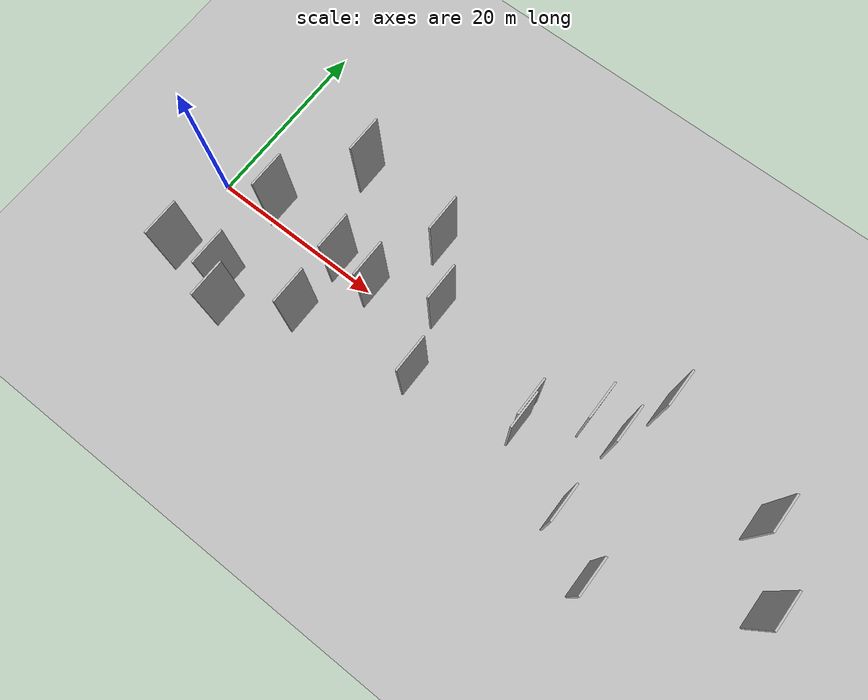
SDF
<?xml version="1.0" encoding="utf-8"?>

<sdf version="1.6">

   <world name="default">

      <gui fullscreen="0">

         <camera name="user_camera">

            <pose>-15 0 4.57585 0 0 0</pose>

            <view_controller>orbit</view_controller>

         </camera>

      </gui>

      <scene>

         <sky>

           <clouds>

             <speed>12</speed>

           </clouds>

         </sky>

         <ambient>0.4 0.4 0.4 1</ambient>

         <background>0.7 0.7 0.7 1</background>

         <shadows>1</shadows>

      </scene>

      <gravity>0 0 -9.8066</gravity>

      <magnetic_field>6e-06 2.3e-05 -4.2e-05</magnetic_field>

      <physics default="0" name="default_physics" type="ode">

         <ode>

            <solver>

               <type>quick</type>

               <iters>10</iters>

               <sor>1.0</sor>

               <use_dynamic_moi_rescaling>0</use_dynamic_moi_rescaling>

            </solver>

            <constraints>

               <cfm>0</cfm>

               <erp>0.2</erp>

               <contact_max_correcting_vel>100</contact_max_correcting_vel>

               <contact_surface_layer>0.001</contact_surface_layer>

            </constraints>

         </ode>

         <max_step_size>0.004</max_step_size>

         <real_time_factor>1</real_time_factor>

         <real_time_update_rate>250</real_time_update_rate>

      </physics>

      <light name="sun" type="directional">

         <cast_shadows>1</cast_shadows>

         <pose>0 0 10 0 0 0</pose>

         <diffuse>0.8 0.8 0.8 1</diffuse>

         <specular>0.2 0.2 0.2 1</specular>

         <attenuation>

            <range>1000</range>

            <constant>0.9</constant>

            <linear>0.01</linear>

            <quadratic>0.001</quadratic>

         </attenuation>

         <direction>-0.5 0.1 -0.9</direction>

      </light>

      <include>

         <name>ground_plane_1</name>

         <uri>model://HANNAS_ground_plane</uri>

         <pose>0 0 0  0 0 0</pose>

      </include>

      <include>

         <name>ground_plane_2</name>

         <uri>model://HANNAS_ground_plane</uri>

         <pose>100 0 0  0 0 0</pose>

      </include>

      <model name="HANNAS_wall_1">

         <static>1</static>

         <pose frame="">4.2249 -9.0640 5.0 0.000000 0.000000 1.570796</pose>

         <link name="link">

            <pose frame="">0 0 5.00 0 0 0</pose>

            <collision name="collision">

               <geometry>

                  <box>

                     <size>4.00 0.2 10.00</size>

                  </box>

               </geometry>

               <max_contacts>10</max_contacts>

               <surface>

                  <contact>

                     <ode/>

                  </contact>

                  <bounce/>

                  <friction>

                     <torsional>

                        <ode/>

                     </torsional>

                     <ode/>

                  </friction>

               </surface>

            </collision>

            <visual name="visual">

               <cast_shadows>0</cast_shadows>

               <geometry>

                  <box>

                     <size>4.00 0.2 10.00</size>

                  </box>

               </geometry>

               <material>

                  <script>

                     <uri>model://HANNAS_wall/materials/scripts</uri>

                     <uri>model://HANNAS_wall/materials/textures</uri>

                     <name>vrc/HANNAS_wall</name>

                  </script>

               </material>

            </visual>

            <self_collide>0</self_collide>

            <enable_wind>0</enable_wind>

            <kinematic>0</kinematic>

         </link>

      </model>

      <model name="HANNAS_wall_2">

         <static>1</static>

         <pose frame="">9.5942 -8.5301 5.0 0.000000 0.000000 1.570796</pose>

         <link name="link">

            <pose frame="">0 0 5.00 0 0 0</pose>

            <collision name="collision">

               <geometry>

                  <box>

                     <size>4.00 0.2 10.00</size>

                  </box>

               </geometry>

               <max_contacts>10</max_contacts>

               <surface>

                  <contact>

                     <ode/>

                  </contact>

                  <bounce/>

                  <friction>

                     <torsional>

                        <ode/>

                     </torsional>

                     <ode/>

                  </friction>

               </surface>

            </collision>

            <visual name="visual">

               <cast_shadows>0</cast_shadows>

               <geometry>

                  <box>

                     <size>4.00 0.2 10.00</size>

                  </box>

               </geometry>

               <material>

                  <script>

                     <uri>model://HANNAS_wall/materials/scripts</uri>

                     <uri>model://HANNAS_wall/materials/textures</uri>

                     <name>vrc/HANNAS_wall</name>

                  </script>

               </material>

            </visual>

            <self_collide>0</self_collide>

            <enable_wind>0</enable_wind>

            <kinematic>0</kinematic>

         </link>

      </model>

      <model name="HANNAS_wall_3">

         <static>1</static>

         <pose frame="">24.5956 7.2333 5.0 0.000000 0.000000 1.570796</pose>

         <link name="link">

            <pose frame="">0 0 5.00 0 0 0</pose>

            <collision name="collision">

               <geometry>

                  <box>

                     <size>4.00 0.2 10.00</size>

                  </box>

               </geometry>

               <max_contacts>10</max_contacts>

               <surface>

                  <contact>

                     <ode/>

                  </contact>

                  <bounce/>

                  <friction>

                     <torsional>

                        <ode/>

                     </torsional>

                     <ode/>

                  </friction>

               </surface>

            </collision>

            <visual name="visual">

               <cast_shadows>0</cast_shadows>

               <geometry>

                  <box>

                     <size>4.00 0.2 10.00</size>

                  </box>

               </geometry>

               <material>

                  <script>

                     <uri>model://HANNAS_wall/materials/scripts</uri>

                     <uri>model://HANNAS_wall/materials/textures</uri>

                     <name>vrc/HANNAS_wall</name>

                  </script>

               </material>

            </visual>

            <self_collide>0</self_collide>

            <enable_wind>0</enable_wind>

            <kinematic>0</kinematic>

         </link>

      </model>

      <model name="HANNAS_wall_4">

         <static>1</static>

         <pose frame="">68.2701 -3.1832 5.0 0.000000 0.000000 1.570796</pose>

         <link name="link">

            <pose frame="">0 0 5.00 0 0 0</pose>

            <collision name="collision">

               <geometry>

                  <box>

                     <size>4.00 0.2 10.00</size>

                  </box>

               </geometry>

               <max_contacts>10</max_contacts>

               <surface>

                  <contact>

                     <ode/>

                  </contact>

                  <bounce/>

                  <friction>

                     <torsional>

                        <ode/>

                     </torsional>

                     <ode/>

                  </friction>

               </surface>

            </collision>

            <visual name="visual">

               <cast_shadows>0</cast_shadows>

               <geometry>

                  <box>

                     <size>4.00 0.2 10.00</size>

                  </box>

               </geometry>

               <material>

                  <script>

                     <uri>model://HANNAS_wall/materials/scripts</uri>

                     <uri>model://HANNAS_wall/materials/textures</uri>

                     <name>vrc/HANNAS_wall</name>

                  </script>

               </material>

            </visual>

            <self_collide>0</self_collide>

            <enable_wind>0</enable_wind>

            <kinematic>0</kinematic>

         </link>

      </model>

      <model name="HANNAS_wall_5">

         <static>1</static>

         <pose frame="">64.0380 3.3772 5.0 0.000000 0.000000 1.570796</pose>

         <link name="link">

            <pose frame="">0 0 5.00 0 0 0</pose>

            <collision name="collision">

               <geometry>

                  <box>

                     <size>4.00 0.2 10.00</size>

                  </box>

               </geometry>

               <max_contacts>10</max_contacts>

               <surface>

                  <contact>

                     <ode/>

                  </contact>

                  <bounce/>

                  <friction>

                     <torsional>

                        <ode/>

                     </torsional>

                     <ode/>

                  </friction>

               </surface>

            </collision>

            <visual name="visual">

               <cast_shadows>0</cast_shadows>

               <geometry>

                  <box>

                     <size>4.00 0.2 10.00</size>

                  </box>

               </geometry>

               <material>

                  <script>

                     <uri>model://HANNAS_wall/materials/scripts</uri>

                     <uri>model://HANNAS_wall/materials/textures</uri>

                     <name>vrc/HANNAS_wall</name>

                  </script>

               </material>

            </visual>

            <self_collide>0</self_collide>

            <enable_wind>0</enable_wind>

            <kinematic>0</kinematic>

         </link>

      </model>

      <model name="HANNAS_wall_6">

         <static>1</static>

         <pose frame="">8.7693 0.5602 5.0 0.000000 0.000000 1.570796</pose>

         <link name="link">

            <pose frame="">0 0 5.00 0 0 0</pose>

            <collision name="collision">

               <geometry>

                  <box>

                     <size>4.00 0.2 10.00</size>

                  </box>

               </geometry>

               <max_contacts>10</max_contacts>

               <surface>

                  <contact>

                     <ode/>

                  </contact>

                  <bounce/>

                  <friction>

                     <torsional>

                        <ode/>

                     </torsional>

                     <ode/>

                  </friction>

               </surface>

            </collision>

            <visual name="visual">

               <cast_shadows>0</cast_shadows>

               <geometry>

                  <box>

                     <size>4.00 0.2 10.00</size>

                  </box>

               </geometry>

               <material>

                  <script>

                     <uri>model://HANNAS_wall/materials/scripts</uri>

                     <uri>model://HANNAS_wall/materials/textures</uri>

                     <name>vrc/HANNAS_wall</name>

                  </script>

               </material>

            </visual>

            <self_collide>0</self_collide>

            <enable_wind>0</enable_wind>

            <kinematic>0</kinematic>

         </link>

      </model>

      <model name="HANNAS_wall_7">

         <static>1</static>

         <pose frame="">11.5757 -10.8467 5.0 0.000000 0.000000 1.570796</pose>

         <link name="link">

            <pose frame="">0 0 5.00 0 0 0</pose>

            <collision name="collision">

               <geometry>

                  <box>

                     <size>4.00 0.2 10.00</size>

                  </box>

               </geometry>

               <max_contacts>10</max_contacts>

               <surface>

                  <contact>

                     <ode/>

                  </contact>

                  <bounce/>

                  <friction>

                     <torsional>

                        <ode/>

                     </torsional>

                     <ode/>

                  </friction>

               </surface>

            </collision>

            <visual name="visual">

               <cast_shadows>0</cast_shadows>

               <geometry>

                  <box>

                     <size>4.00 0.2 10.00</size>

                  </box>

               </geometry>

               <material>

                  <script>

                     <uri>model://HANNAS_wall/materials/scripts</uri>

                     <uri>model://HANNAS_wall/materials/textures</uri>

                     <name>vrc/HANNAS_wall</name>

                  </script>

               </material>

            </visual>

            <self_collide>0</self_collide>

            <enable_wind>0</enable_wind>

            <kinematic>0</kinematic>

         </link>

      </model>

      <model name="HANNAS_wall_8">

         <static>1</static>

         <pose frame="">17.8787 -6.8454 5.0 0.000000 0.000000 1.570796</pose>

         <link name="link">

            <pose frame="">0 0 5.00 0 0 0</pose>

            <collision name="collision">

               <geometry>

                  <box>

                     <size>4.00 0.2 10.00</size>

                  </box>

               </geometry>

               <max_contacts>10</max_contacts>

               <surface>

                  <contact>

                     <ode/>

                  </contact>

                  <bounce/>

                  <friction>

                     <torsional>

                        <ode/>

                     </torsional>

                     <ode/>

                  </friction>

               </surface>

            </collision>

            <visual name="visual">

               <cast_shadows>0</cast_shadows>

               <geometry>

                  <box>

                     <size>4.00 0.2 10.00</size>

                  </box>

               </geometry>

               <material>

                  <script>

                     <uri>model://HANNAS_wall/materials/scripts</uri>

                     <uri>model://HANNAS_wall/materials/textures</uri>

                     <name>vrc/HANNAS_wall</name>

                  </script>

               </material>

            </visual>

            <self_collide>0</self_collide>

            <enable_wind>0</enable_wind>

            <kinematic>0</kinematic>

         </link>

      </model>

      <model name="HANNAS_wall_9">

         <static>1</static>

         <pose frame="">41.2874 -1.6338 5.0 0.000000 0.000000 1.570796</pose>

         <link name="link">

            <pose frame="">0 0 5.00 0 0 0</pose>

            <collision name="collision">

               <geometry>

                  <box>

                     <size>4.00 0.2 10.00</size>

                  </box>

               </geometry>

               <max_contacts>10</max_contacts>

               <surface>

                  <contact>

                     <ode/>

                  </contact>

                  <bounce/>

                  <friction>

                     <torsional>

                        <ode/>

                     </torsional>

                     <ode/>

                  </friction>

               </surface>

            </collision>

            <visual name="visual">

               <cast_shadows>0</cast_shadows>

               <geometry>

                  <box>

                     <size>4.00 0.2 10.00</size>

                  </box>

               </geometry>

               <material>

                  <script>

                     <uri>model://HANNAS_wall/materials/scripts</uri>

                     <uri>model://HANNAS_wall/materials/textures</uri>

                     <name>vrc/HANNAS_wall</name>

                  </script>

               </material>

            </visual>

            <self_collide>0</self_collide>

            <enable_wind>0</enable_wind>

            <kinematic>0</kinematic>

         </link>

      </model>

      <model name="HANNAS_wall_10">

         <static>1</static>

         <pose frame="">17.6806 -0.3486 5.0 0.000000 0.000000 1.570796</pose>

         <link name="link">

            <pose frame="">0 0 5.00 0 0 0</pose>

            <collision name="collision">

               <geometry>

                  <box>

                     <size>4.00 0.2 10.00</size>

                  </box>

               </geometry>

               <max_contacts>10</max_contacts>

               <surface>

                  <contact>

                     <ode/>

                  </contact>

                  <bounce/>

                  <friction>

                     <torsional>

                        <ode/>

                     </torsional>

                     <ode/>

                  </friction>

               </surface>

            </collision>

            <visual name="visual">

               <cast_shadows>0</cast_shadows>

               <geometry>

                  <box>

                     <size>4.00 0.2 10.00</size>

                  </box>

               </geometry>

               <material>

                  <script>

                     <uri>model://HANNAS_wall/materials/scripts</uri>

                     <uri>model://HANNAS_wall/materials/textures</uri>

                     <name>vrc/HANNAS_wall</name>

                  </script>

               </material>

            </visual>

            <self_collide>0</self_collide>

            <enable_wind>0</enable_wind>

            <kinematic>0</kinematic>

         </link>

      </model>

      <model name="HANNAS_wall_11">

         <static>1</static>

         <pose frame="">21.9220 -0.4787 5.0 0.000000 0.000000 1.570796</pose>

         <link name="link">

            <pose frame="">0 0 5.00 0 0 0</pose>

            <collision name="collision">

               <geometry>

                  <box>

                     <size>4.00 0.2 10.00</size>

                  </box>

               </geometry>

               <max_contacts>10</max_contacts>

               <surface>

                  <contact>

                     <ode/>

                  </contact>

                  <bounce/>

                  <friction>

                     <torsional>

                        <ode/>

                     </torsional>

                     <ode/>

                  </friction>

               </surface>

            </collision>

            <visual name="visual">

               <cast_shadows>0</cast_shadows>

               <geometry>

                  <box>

                     <size>4.00 0.2 10.00</size>

                  </box>

               </geometry>

               <material>

                  <script>

                     <uri>model://HANNAS_wall/materials/scripts</uri>

                     <uri>model://HANNAS_wall/materials/textures</uri>

                     <name>vrc/HANNAS_wall</name>

                  </script>

               </material>

            </visual>

            <self_collide>0</self_collide>

            <enable_wind>0</enable_wind>

            <kinematic>0</kinematic>

         </link>

      </model>

      <model name="HANNAS_wall_12">

         <static>1</static>

         <pose frame="">48.8392 -7.2472 5.0 0.000000 0.000000 1.570796</pose>

         <link name="link">

            <pose frame="">0 0 5.00 0 0 0</pose>

            <collision name="collision">

               <geometry>

                  <box>

                     <size>4.00 0.2 10.00</size>

                  </box>

               </geometry>

               <max_contacts>10</max_contacts>

               <surface>

                  <contact>

                     <ode/>

                  </contact>

                  <bounce/>

                  <friction>

                     <torsional>

                        <ode/>

                     </torsional>

                     <ode/>

                  </friction>

               </surface>

            </collision>

            <visual name="visual">

               <cast_shadows>0</cast_shadows>

               <geometry>

                  <box>

                     <size>4.00 0.2 10.00</size>

                  </box>

               </geometry>

               <material>

                  <script>

                     <uri>model://HANNAS_wall/materials/scripts</uri>

                     <uri>model://HANNAS_wall/materials/textures</uri>

                     <name>vrc/HANNAS_wall</name>

                  </script>

               </material>

            </visual>

            <self_collide>0</self_collide>

            <enable_wind>0</enable_wind>

            <kinematic>0</kinematic>

         </link>

      </model>

      <model name="HANNAS_wall_13">

         <static>1</static>

         <pose frame="">13.6725 9.0009 5.0 0.000000 0.000000 1.570796</pose>

         <link name="link">

            <pose frame="">0 0 5.00 0 0 0</pose>

            <collision name="collision">

               <geometry>

                  <box>

                     <size>4.00 0.2 10.00</size>

                  </box>

               </geometry>

               <max_contacts>10</max_contacts>

               <surface>

                  <contact>

                     <ode/>

                  </contact>

                  <bounce/>

                  <friction>

                     <torsional>

                        <ode/>

                     </torsional>

                     <ode/>

                  </friction>

               </surface>

            </collision>

            <visual name="visual">

               <cast_shadows>0</cast_shadows>

               <geometry>

                  <box>

                     <size>4.00 0.2 10.00</size>

                  </box>

               </geometry>

               <material>

                  <script>

                     <uri>model://HANNAS_wall/materials/scripts</uri>

                     <uri>model://HANNAS_wall/materials/textures</uri>

                     <name>vrc/HANNAS_wall</name>

                  </script>

               </material>

            </visual>

            <self_collide>0</self_collide>

            <enable_wind>0</enable_wind>

            <kinematic>0</kinematic>

         </link>

      </model>

      <model name="HANNAS_wall_14">

         <static>1</static>

         <pose frame="">46.3816 1.8595 5.0 0.000000 0.000000 1.570796</pose>

         <link name="link">

            <pose frame="">0 0 5.00 0 0 0</pose>

            <collision name="collision">

               <geometry>

                  <box>

                     <size>4.00 0.2 10.00</size>

                  </box>

               </geometry>

               <max_contacts>10</max_contacts>

               <surface>

                  <contact>

                     <ode/>

                  </contact>

                  <bounce/>

                  <friction>

                     <torsional>

                        <ode/>

                     </torsional>

                     <ode/>

                  </friction>

               </surface>

            </collision>

            <visual name="visual">

               <cast_shadows>0</cast_shadows>

               <geometry>

                  <box>

                     <size>4.00 0.2 10.00</size>

                  </box>

               </geometry>

               <material>

                  <script>

                     <uri>model://HANNAS_wall/materials/scripts</uri>

                     <uri>model://HANNAS_wall/materials/textures</uri>

                     <name>vrc/HANNAS_wall</name>

                  </script>

               </material>

            </visual>

            <self_collide>0</self_collide>

            <enable_wind>0</enable_wind>

            <kinematic>0</kinematic>

         </link>

      </model>

      <model name="HANNAS_wall_15">

         <static>1</static>

         <pose frame="">41.5039 -2.9246 5.0 0.000000 0.000000 1.570796</pose>

         <link name="link">

            <pose frame="">0 0 5.00 0 0 0</pose>

            <collision name="collision">

               <geometry>

                  <box>

                     <size>4.00 0.2 10.00</size>

                  </box>

               </geometry>

               <max_contacts>10</max_contacts>

               <surface>

                  <contact>

                     <ode/>

                  </contact>

                  <bounce/>

                  <friction>

                     <torsional>

                        <ode/>

                     </torsional>

                     <ode/>

                  </friction>

               </surface>

            </collision>

            <visual name="visual">

               <cast_shadows>0</cast_shadows>

               <geometry>

                  <box>

                     <size>4.00 0.2 10.00</size>

                  </box>

               </geometry>

               <material>

                  <script>

                     <uri>model://HANNAS_wall/materials/scripts</uri>

                     <uri>model://HANNAS_wall/materials/textures</uri>

                     <name>vrc/HANNAS_wall</name>

                  </script>

               </material>

            </visual>

            <self_collide>0</self_collide>

            <enable_wind>0</enable_wind>

            <kinematic>0</kinematic>

         </link>

      </model>

      <model name="HANNAS_wall_16">

         <static>1</static>

         <pose frame="">54.1841 -10.6708 5.0 0.000000 0.000000 1.570796</pose>

         <link name="link">

            <pose frame="">0 0 5.00 0 0 0</pose>

            <collision name="collision">

               <geometry>

                  <box>

                     <size>4.00 0.2 10.00</size>

                  </box>

               </geometry>

               <max_contacts>10</max_contacts>

               <surface>

                  <contact>

                     <ode/>

                  </contact>

                  <bounce/>

                  <friction>

                     <torsional>

                        <ode/>

                     </torsional>

                     <ode/>

                  </friction>

               </surface>

            </collision>

            <visual name="visual">

               <cast_shadows>0</cast_shadows>

               <geometry>

                  <box>

                     <size>4.00 0.2 10.00</size>

                  </box>

               </geometry>

               <material>

                  <script>

                     <uri>model://HANNAS_wall/materials/scripts</uri>

                     <uri>model://HANNAS_wall/materials/textures</uri>

                     <name>vrc/HANNAS_wall</name>

                  </script>

               </material>

            </visual>

            <self_collide>0</self_collide>

            <enable_wind>0</enable_wind>

            <kinematic>0</kinematic>

         </link>

      </model>

      <model name="HANNAS_wall_17">

         <static>1</static>

         <pose frame="">28.6159 1.8537 5.0 0.000000 0.000000 1.570796</pose>

         <link name="link">

            <pose frame="">0 0 5.00 0 0 0</pose>

            <collision name="collision">

               <geometry>

                  <box>

                     <size>4.00 0.2 10.00</size>

                  </box>

               </geometry>

               <max_contacts>10</max_contacts>

               <surface>

                  <contact>

                     <ode/>

                  </contact>

                  <bounce/>

                  <friction>

                     <torsional>

                        <ode/>

                     </torsional>

                     <ode/>

                  </friction>

               </surface>

            </collision>

            <visual name="visual">

               <cast_shadows>0</cast_shadows>

               <geometry>

                  <box>

                     <size>4.00 0.2 10.00</size>

                  </box>

               </geometry>

               <material>

                  <script>

                     <uri>model://HANNAS_wall/materials/scripts</uri>

                     <uri>model://HANNAS_wall/materials/textures</uri>

                     <name>vrc/HANNAS_wall</name>

                  </script>

               </material>

            </visual>

            <self_collide>0</self_collide>

            <enable_wind>0</enable_wind>

            <kinematic>0</kinematic>

         </link>

      </model>

      <model name="HANNAS_wall_18">

         <static>1</static>

         <pose frame="">49.4195 1.6422 5.0 0.000000 0.000000 1.570796</pose>

         <link name="link">

            <pose frame="">0 0 5.00 0 0 0</pose>

            <collision name="collision">

               <geometry>

                  <box>

                     <size>4.00 0.2 10.00</size>

                  </box>

               </geometry>

               <max_contacts>10</max_contacts>

               <surface>

                  <contact>

                     <ode/>

                  </contact>

                  <bounce/>

                  <friction>

                     <torsional>

                        <ode/>

                     </torsional>

                     <ode/>

                  </friction>

               </surface>

            </collision>

            <visual name="visual">

               <cast_shadows>0</cast_shadows>

               <geometry>

                  <box>

                     <size>4.00 0.2 10.00</size>

                  </box>

               </geometry>

               <material>

                  <script>

                     <uri>model://HANNAS_wall/materials/scripts</uri>

                     <uri>model://HANNAS_wall/materials/textures</uri>

                     <name>vrc/HANNAS_wall</name>

                  </script>

               </material>

            </visual>

            <self_collide>0</self_collide>

            <enable_wind>0</enable_wind>

            <kinematic>0</kinematic>

         </link>

      </model>

      <model name="HANNAS_wall_19">

         <static>1</static>

         <pose frame="">30.5605 -5.0797 5.0 0.000000 0.000000 1.570796</pose>

         <link name="link">

            <pose frame="">0 0 5.00 0 0 0</pose>

            <collision name="collision">

               <geometry>

                  <box>

                     <size>4.00 0.2 10.00</size>

                  </box>

               </geometry>

               <max_contacts>10</max_contacts>

               <surface>

                  <contact>

                     <ode/>

                  </contact>

                  <bounce/>

                  <friction>

                     <torsional>

                        <ode/>

                     </torsional>

                     <ode/>

                  </friction>

               </surface>

            </collision>

            <visual name="visual">

               <cast_shadows>0</cast_shadows>

               <geometry>

                  <box>

                     <size>4.00 0.2 10.00</size>

                  </box>

               </geometry>

               <material>

                  <script>

                     <uri>model://HANNAS_wall/materials/scripts</uri>

                     <uri>model://HANNAS_wall/materials/textures</uri>

                     <name>vrc/HANNAS_wall</name>

                  </script>

               </material>

            </visual>

            <self_collide>0</self_collide>

            <enable_wind>0</enable_wind>

            <kinematic>0</kinematic>

         </link>

      </model>

      <model name="HANNAS_wall_20">

         <static>1</static>

         <pose frame="">51.1907 6.9413 5.0 0.000000 0.000000 1.570796</pose>

         <link name="link">

            <pose frame="">0 0 5.00 0 0 0</pose>

            <collision name="collision">

               <geometry>

                  <box>

                     <size>4.00 0.2 10.00</size>

                  </box>

               </geometry>

               <max_contacts>10</max_contacts>

               <surface>

                  <contact>

                     <ode/>

                  </contact>

                  <bounce/>

                  <friction>

                     <torsional>

                        <ode/>

                     </torsional>

                     <ode/>

                  </friction>

               </surface>

            </collision>

            <visual name="visual">

               <cast_shadows>0</cast_shadows>

               <geometry>

                  <box>

                     <size>4.00 0.2 10.00</size>

                  </box>

               </geometry>

               <material>

                  <script>

                     <uri>model://HANNAS_wall/materials/scripts</uri>

                     <uri>model://HANNAS_wall/materials/textures</uri>

                     <name>vrc/HANNAS_wall</name>

                  </script>

               </material>

            </visual>

            <self_collide>0</self_collide>

            <enable_wind>0</enable_wind>

            <kinematic>0</kinematic>

         </link>

      </model>

   </world>

</sdf>

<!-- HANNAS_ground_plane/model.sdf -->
<sdf version="1.4">
<model name="HANNAS_ground_plane">
  <static>true</static>
    <link name="link">
      <collision name="collision">
        <geometry>
          <plane>
            <normal>0 0 1</normal>
            <size>1000 1000</size>
          </plane>
        </geometry>
        <surface>
          <friction>
            <ode>
              <mu>100</mu>
              <mu2>50</mu2>
            </ode>
          </friction>
        </surface>
      </collision>
      <visual name="visual">
        <cast_shadows>false</cast_shadows>
        <geometry>
          <plane>
            <normal>0 0 1</normal>
            <size>1000 1000</size>
          </plane>
        </geometry>
        <material>
          <script>
            <uri>model://HANNAS_ground_plane/materials/scripts/HANNAS_ground_plane.material</uri>
	    <uri>model://HANNAS_ground_plane/materials/textures</uri>
            <name>HANNASGroundPlane/Image</name>
          </script>
        </material>
      </visual>
    </link>
  </model>
</sdf>
